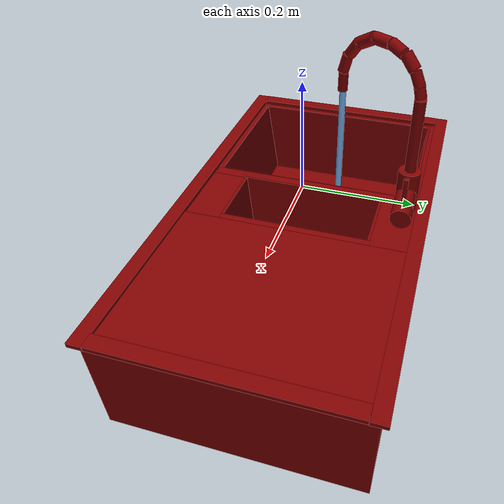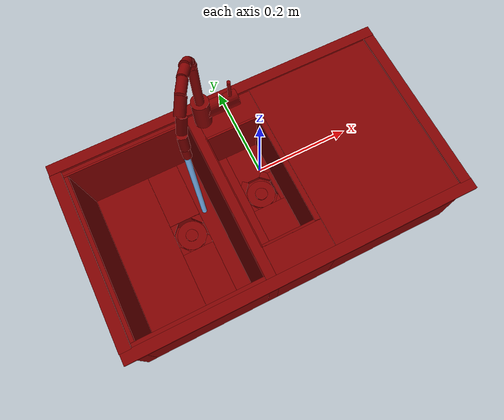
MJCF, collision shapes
<mujoco model="model">
  <compiler angle="radian"/>
  <asset>
    <mesh file="visuals/handle.obj" name="handle_vis"/>
    <mesh file="visuals/Body001.obj" name="Body001_vis"/>
    <mesh file="visuals/Funnel001.obj" name="Funnel001_vis"/>
    <mesh file="visuals/Funnel002.obj" name="Funnel002_vis"/>
    <mesh file="visuals/spout.obj" name="spout_vis"/>
    <texture file="visuals/T_BC001.png" name="Body001_material" type="2d"/>
    <material name="Body001_material" rgba="1 1 1 1.0" texture="Body001_material" shininess="-1023.0" specular="0.3103448502657381"/>
    <texture file="visuals/T_BC001.png" name="handle_material" type="2d"/>
    <material name="handle_material" rgba="1 1 1 1.0" texture="handle_material" shininess="-1023.0" specular="0.3103448502657381"/>
    <texture file="visuals/T_BC001.png" name="Funnel001_material" type="2d"/>
    <material name="Funnel001_material" rgba="1 1 1 1.0" texture="Funnel001_material" shininess="-1023.0" specular="0.3103448502657381"/>
    <texture file="visuals/T_BC001.png" name="Funnel002_material" type="2d"/>
    <material name="Funnel002_material" rgba="1 1 1 1.0" texture="Funnel002_material" shininess="-1023.0" specular="0.3103448502657381"/>
    <texture file="visuals/T_BC001.png" name="spout_material" type="2d"/>
    <material name="spout_material" rgba="1 1 1 1.0" texture="spout_material" shininess="-1023.0" specular="0.3103448502657381"/>
  </asset>
  <default>
    <default class="visual">
      <geom conaffinity="0" contype="0" group="1" type="mesh"/>
    </default>
    <default class="collision">
      <geom group="0" rgba="0.5 0 0 0.5"/>
    </default>
    <default class="spawn">
      <geom group="0" rgba="1 1 1 0.5" contype="0" conaffinity="0"/>
      <site group="0" rgba="1 1 1 0.5"/>
    </default>
    <default class="region">
      <geom group="1" conaffinity="0" contype="0" rgba="0 1 0 0"/>
    </default>
  </default>
  <worldbody>
    <body>
      <body name="object">
        <geom mesh="Body001_vis" type="mesh" solimp="0.998 0.998 0.001" solref="0.001 1" density="100" friction="0.95 0.3 0.1" class="visual" material="Body001_material"/>
        <geom class="collision" type="box" pos="0.23652738332748413 0.00023410702124238014 -0.14926347136497498" size="0.16209204494953156 0.22183653712272644 0.10342414677143097" quat="1.0 0.0 0.0 0.0"/>
        <geom class="collision" type="cylinder" pos="-0.021326115354895592 0.18427163362503052 -0.008932516910135746" size="0.018282365053892136 0.020360218361020088" quat="0.5 0.4999999701976776 0.5 0.5"/>
        <geom class="collision" type="cylinder" pos="-0.051278628408908844 0.18416287004947662 -0.010989080183207989" size="0.020259195938706398 0.047851018607616425" quat="0.9990497827529907 0.0 0.0 0.04358312115073204"/>
        <geom class="collision" type="box" pos="-0.07560476660728455 9.405938908457756e-05 -0.15127705037593842" size="0.012089341878890991 0.22169646620750427 0.10238426178693771" quat="1.0 0.0 0.0 0.0"/>
        <geom class="collision" type="box" pos="0.005088299512863159 -0.17985501885414124 -0.15042777359485626" size="0.06973908096551895 0.041747402399778366 0.10225952416658401" quat="1.0 0.0 0.0 0.0"/>
        <geom class="collision" type="box" pos="0.005088299512863159 -0.1315426081418991 -0.099894218146801" size="0.06973908096551895 0.0026383125223219395 0.05264557898044586" quat="0.9983898401260376 0.05672502517700195 0.0 0.0"/>
        <geom class="collision" type="box" pos="0.005088299512863159 0.12853343784809113 -0.11045671999454498" size="0.06973908096551895 0.0026383125223219395 0.06332626193761826" quat="0.9974493384361267 -0.07137805223464966 0.0 0.0"/>
        <geom class="collision" type="box" pos="0.005088299512863159 0.18094712495803833 -0.15042777359485626" size="0.06973908096551895 0.041364654898643494 0.10225936025381088" quat="1.0 0.0 0.0 0.0"/>
        <geom class="collision" type="box" pos="-0.23876143991947174 0.1889650821685791 -0.12696334719657898" size="0.14949655532836914 0.002638312289491296 0.07926877588033676" quat="0.9990689158439636 -0.043143387883901596 0.0 0.0"/>
        <geom class="collision" type="box" pos="-0.2434958964586258 0.20812034606933594 -0.15042777359485626" size="0.1542310118675232 0.01276779267936945 0.10225598514080048" quat="1.0 0.0 0.0 0.0"/>
        <geom class="collision" type="box" pos="-0.23876143991947174 -0.18729108572006226 -0.1269821971654892" size="0.14949655532836914 0.002638312289491296 0.07926878333091736" quat="0.9973665475845337 0.07252559065818787 0.0 0.0"/>
        <geom class="collision" type="box" pos="-0.24286778271198273 -0.20866277813911438 -0.15042777359485626" size="0.15485912561416626 0.01276779267936945 0.10225598514080048" quat="1.0 0.0 0.0 0.0"/>
        <geom class="collision" type="box" pos="-0.30198803544044495 -0.0015555024147033691 -0.23092524707317352" size="0.0775531753897667 0.19654637575149536 0.022491823881864548" quat="1.0 0.0 0.0 0.0"/>
        <geom class="collision" type="box" pos="-0.3863503336906433 9.405938908457756e-05 -0.15127705037593842" size="0.011722794733941555 0.22169646620750427 0.10238329321146011" quat="1.0 0.0 0.0 0.0"/>
        <geom class="collision" type="box" pos="-0.367370069026947 0.0006847637705504894 -0.15127091109752655" size="0.002350295428186655 0.19769826531410217 0.10238055139780045" quat="0.9991256594657898 0.0 -0.041807886213064194 0.0"/>
        <geom class="collision" type="box" pos="-0.11571699380874634 -0.0015555024147033691 -0.23107434809207916" size="0.0305434949696064 0.19654637575149536 0.022342780604958534" quat="1.0 0.0 0.0 0.0"/>
        <geom class="collision" type="box" pos="-0.184838205575943 0.1186731830239296 -0.23170946538448334" size="0.040500566363334656 0.07903584092855453 0.02170766144990921" quat="1.0 0.0 0.0 0.0"/>
        <geom class="collision" type="box" pos="-0.18600966036319733 -0.12200066447257996 -0.23117496073246002" size="0.04122575372457504 0.08241641521453857 0.022242633625864983" quat="1.0 0.0 0.0 0.0"/>
        <geom class="collision" type="box" pos="-0.045667652040719986 -0.0013713464140892029 -0.1635603904724121" size="0.014139543287456036 0.1264631152153015 0.013112707063555717" quat="1.0 0.0 0.0 0.0"/>
        <geom class="collision" type="box" pos="0.051219642162323 -0.005265929736196995 -0.16300077736377716" size="0.01209177728742361 0.044978559017181396 0.012109190225601196" quat="1.0 0.0 0.0 0.0"/>
        <geom class="collision" type="box" pos="0.013094743713736534 0.08130013942718506 -0.1572476178407669" size="0.04683594033122063 0.04241792485117912 0.00627686083316803" quat="1.0 0.0 0.0 0.0"/>
        <geom class="collision" type="box" pos="0.014179454185068607 -0.07933476567268372 -0.15682582557201385" size="0.046549007296562195 0.0453357957303524 0.006698662415146828" quat="1.0 0.0 0.0 0.0"/>
        <geom class="collision" type="box" pos="-0.09168035537004471 0.0006763041019439697 -0.13003428280353546" size="0.007510052993893623 0.19804197549819946 0.08050790429115295" quat="0.9981808066368103 0.0 0.06029169261455536 0.0"/>
        <geom class="collision" type="box" pos="0.06238365173339844 0.0006763041019439697 -0.10089131444692612" size="0.007510052062571049 0.14010055363178253 0.054632414132356644" quat="0.9981808066368103 0.0 0.06029169261455536 0.0"/>
        <geom class="collision" type="box" pos="-0.05904521048069 0.0006763041019439697 -0.1002633273601532" size="0.0012203236110508442 0.14010055363178253 0.054632414132356644" quat="0.9985798597335815 0.0 -0.05327498912811279 0.0"/>
        <geom class="collision" type="box" pos="0.0002938508987426758 0.21976149082183838 -0.04482324421405792" size="0.4090060293674469 0.013016534969210625 0.0041864109225571156" quat="1.0 0.0 0.0 0.0"/>
        <geom class="collision" type="box" pos="0.0002938508987426758 -0.21892192959785461 -0.04482324421405792" size="0.4090060293674469 0.013016534969210625 0.0041864109225571156" quat="1.0 0.0 0.0 0.0"/>
        <geom class="collision" type="box" pos="-0.39669299125671387 -0.0007286593317985535 -0.04482324421405792" size="0.013016549870371819 0.20691721141338348 0.004186480306088924" quat="1.0 0.0 0.0 0.0"/>
        <geom class="collision" type="box" pos="0.39572858810424805 -0.0007286220788955688 -0.04482324421405792" size="0.013016549870371819 0.20691721141338348 0.004186470061540604" quat="1.0 0.0 0.0 0.0"/>
        <geom class="collision" type="box" pos="0.005088299512863159 0.0007530823349952698 -0.2153775990009308" size="0.06973908096551895 0.14008310437202454 0.03730699419975281" quat="1.0 0.0 0.0 0.0"/>
        <geom class="collision" type="box" pos="-0.18519650399684906 -0.004535593092441559 -0.24889975786209106" size="0.03927761688828468 0.04429145157337189 0.004517826251685619" quat="1.0 0.0 0.0 0.0"/>
        <geom class="collision" type="box" pos="-0.21963703632354736 0.03309756889939308 -0.2168779820203781" size="0.0077866483479738235 0.01505254115909338 0.004746152553707361" quat="0.9355807900428772 0.0 -0.0 -0.35311275720596313"/>
        <geom class="collision" type="box" pos="-0.2188185155391693 -0.03232163190841675 -0.2168779820203781" size="0.007786647416651249 0.01505254115909338 0.004746152553707361" quat="0.9381937980651855 0.0 0.0 0.34611037373542786"/>
        <geom class="collision" type="box" pos="-0.15329214930534363 0.03226673603057861 -0.2168779820203781" size="0.007786647416651249 0.01505254115909338 0.004746152553707361" quat="0.9381937980651855 0.0 0.0 0.34611037373542786"/>
        <geom class="collision" type="box" pos="-0.15437868237495422 -0.032964807003736496 -0.2168779820203781" size="0.0077866483479738235 0.01505254115909338 0.004746152553707361" quat="0.9355807900428772 0.0 -0.0 -0.35311275720596313"/>
        <geom class="collision" type="box" pos="-0.02706190012395382 0.03058907389640808 -0.15569910407066345" size="0.0077866483479738235 0.01505254115909338 0.004746152553707361" quat="0.9355807900428772 0.0 -0.0 -0.35311275720596313"/>
        <geom class="collision" type="box" pos="0.03625345230102539 -0.0322796106338501 -0.15569910407066345" size="0.0077866483479738235 0.01505254115909338 0.004746152553707361" quat="0.9355807900428772 0.0 -0.0 -0.35311275720596313"/>
        <geom class="collision" type="box" pos="0.03406063839793205 0.03458072990179062 -0.15569910407066345" size="0.0077866483479738235 0.01505254115909338 0.004746152553707361" quat="0.9161313772201538 0.0 0.0 0.4008781909942627"/>
        <geom class="collision" type="box" pos="-0.029377171769738197 -0.0308250579982996 -0.15569910407066345" size="0.0077866483479738235 0.01505254115909338 0.004746152553707361" quat="0.9573758840560913 0.0 0.0 0.2888449430465698"/>
        <body name="handle">
          <joint axis="1.0 0.0 0.0" pos="0.011728471145033836 0.18457047641277313 -0.009023033082485199" limited="true" name="handle_joint_hinge_0" type="hinge" range="-0.7853981633974483 0.7853981633974483" damping="1" frictionloss="1" armature=".01" stiffness="0.05"/>
          <joint axis="0.0 1.0 0.0" pos="0.011728471145033836 0.18457047641277313 -0.009023033082485199" limited="true" name="handle_joint_hinge_1" type="hinge" range="0.0 0.17453292519943295" damping="1" frictionloss="1" armature=".01" stiffness="0.05"/>
          <geom mesh="handle_vis" type="mesh" solimp="0.998 0.998 0.001" solref="0.001 1" density="100" friction="0.95 0.3 0.1" class="visual" material="handle_material"/>
          <geom class="collision" type="cylinder" pos="0.020263846963644028 0.18472900986671448 -0.008932520635426044" size="0.01856803148984909 0.014965763315558434" quat="0.5 0.4999999701976776 0.5 0.5"/>
          <geom class="collision" type="cylinder" pos="0.00618293322622776 0.18427163362503052 -0.008932520635426044" size="0.01044311560690403 0.002668767236173153" quat="0.5 0.4999999701976776 0.5 0.5"/>
          <geom class="collision" type="cylinder" pos="0.018877984955906868 0.1845209300518036 0.03694717586040497" size="0.0043233647011220455 0.02681279182434082" quat="1.0 0.0 0.0 0.0"/>
        </body>
        <body name="Funnel001">
          <joint axis="0.0 0.0 1.0" pos="-0.18521839380264282 -0.00014210294466465712 -0.22248810529708862" limited="true" name="Funnel001_joint" range="0.0 0.3" type="slide" damping="1" frictionloss="1" armature=".01" stiffness="0.05"/>
          <geom mesh="Funnel001_vis" type="mesh" solimp="0.998 0.998 0.001" solref="0.001 1" density="100" friction="0.95 0.3 0.1" class="visual" material="Funnel001_material"/>
          <geom class="collision" type="cylinder" pos="-0.18476738035678864 -4.830211400985718e-05 -0.22137907147407532" size="0.03602096065878868 0.0008388549904339015" quat="1.0 0.0 0.0 0.0"/>
          <geom class="collision" type="cylinder" pos="-0.1853657364845276 -4.830211400985718e-05 -0.221288800239563" size="0.014919627457857132 0.00391645822674036" quat="1.0 0.0 0.0 0.0"/>
        </body>
        <body name="Funnel002">
          <joint axis="0.0 0.0 1.0" pos="0.004342064261436462 0.0004828465171158314 -0.16072390973567963" limited="true" name="Funnel002_joint" range="0.0 0.3" type="slide" damping="1" frictionloss="1" armature=".01" stiffness="0.05"/>
          <geom mesh="Funnel002_vis" type="mesh" solimp="0.998 0.998 0.001" solref="0.001 1" density="100" friction="0.95 0.3 0.1" class="visual" material="Funnel002_material"/>
          <geom class="collision" type="cylinder" pos="0.003999099135398865 0.0007852166891098022 -0.1609553098678589" size="0.03342888504266739 0.0018126824870705605" quat="1.0 0.0 0.0 0.0"/>
          <geom class="collision" type="cylinder" pos="0.004415725823491812 0.00033873505890369415 -0.15955613553524017" size="0.014739518985152245 0.004046990070492029" quat="1.0 0.0 0.0 0.0"/>
        </body>
        <body name="spout">
          <joint axis="0.0 0.0 1.0" pos="-0.05164801701903343 0.18472075462341309 0.13476690649986267" limited="true" name="spout_joint" range="-0.7853981633974483 0.7853981633974483" type="hinge" damping="1" frictionloss="1" armature=".01" stiffness="0.05"/>
          <site type="cylinder" rgba="0.5 0.75 1 1" size="0.0060607255436480045 0.17275060713291168" pos="-0.13217833638191223 0.03850845247507095 -0.030280524864792824" name="water"/>
          <geom mesh="spout_vis" type="mesh" solimp="0.998 0.998 0.001" solref="0.001 1" density="100" friction="0.95 0.3 0.1" class="visual" material="spout_material"/>
          <geom class="collision" type="cylinder" pos="-0.051278628408908844 0.18416287004947662 0.1043071374297142" size="0.010071869939565659 0.06765434145927429" quat="0.9990497827529907 0.0 0.0 0.04358312115073204"/>
          <geom class="collision" type="cylinder" pos="-0.056350983679294586 0.17457735538482666 0.20272040367126465" size="0.00965795572847128 0.013342335820198059" quat="0.9196361303329468 0.16925090551376343 -0.19007854163646698 0.29915493726730347"/>
          <geom class="collision" type="cylinder" pos="-0.066947340965271 0.15883058309555054 0.224899023771286" size="0.010738730430603027 0.014835407957434654" quat="0.8670938014984131 0.2554492652416229 -0.30630964040756226 0.2984432876110077"/>
          <geom class="collision" type="cylinder" pos="-0.07950039207935333 0.135133296251297 0.23928937315940857" size="0.010424953885376453 0.0144019341096282" quat="0.755740761756897 0.35412755608558655 -0.47815293073654175 0.2735312283039093"/>
          <geom class="collision" type="cylinder" pos="-0.09486466646194458 0.10810258239507675 0.24340298771858215" size="0.010484162718057632 0.016757162287831306" quat="0.6666451692581177 0.44615498185157776 -0.546674907207489 0.24015936255455017"/>
          <geom class="collision" type="cylinder" pos="-0.11060402542352676 0.08012466132640839 0.23531442880630493" size="0.011186142452061176 0.017792953178286552" quat="0.48275741934776306 0.5455015301704407 -0.6670209765434265 0.15638543665409088"/>
          <geom class="collision" type="cylinder" pos="-0.12134332209825516 0.057463571429252625 0.21556027233600616" size="0.010224497877061367 0.016100460663437843" quat="0.31250452995300293 0.6214025020599365 -0.7136070728302002 0.08345532417297363"/>
          <geom class="collision" type="cylinder" pos="-0.1290028691291809 0.04171176254749298 0.185683473944664" size="0.01005901675671339 0.01656615175306797" quat="0.10936148464679718 0.6737759113311768 -0.7270243167877197 0.07417364418506622"/>
          <geom class="collision" type="cylinder" pos="-0.131002277135849 0.038335949182510376 0.15161480009555817" size="0.0089662941172719 0.01852126605808735" quat="-0.006637726444751024 0.6839892268180847 -0.7293778657913208 0.011073256842792034"/>
          <geom class="collision" type="cylinder" pos="-0.053058695048093796 0.18088531494140625 0.18565408885478973" size="0.009657956659793854 0.013342335820198059" quat="0.9186800122261047 0.09213677048683167 -0.16663409769535065 0.34607934951782227"/>
        </body>
        <geom class="region" name="reg_main" type="box" pos="-7.450580596923828e-09 0.0 -0.1464393436908722" size="0.4084668457508087 0.23256176710128784 0.10692651569843292"/>
        <geom class="region" name="reg_basin_left" type="box" pos="-0.23170454800128937 -0.0006772875785827637 -0.1347910836338997" size="0.1345590502023697 0.18687570095062256 0.08016728609800339"/>
        <geom class="region" name="reg_basin_right" type="box" pos="0.004938986152410507 -0.0012628957629203796 -0.10136634856462479" size="0.058521222323179245 0.1255713477730751 0.046116046607494354"/>
      </body>
    </body>
  </worldbody>
  <actuator>
    <motor name="handle_joint_hinge_0_actuator" joint="handle_joint_hinge_0" gear="10"/>
    <motor name="handle_joint_hinge_1_actuator" joint="handle_joint_hinge_1" gear="10"/>
    <motor name="Funnel001_joint_actuator" joint="Funnel001_joint" gear="10"/>
    <motor name="Funnel002_joint_actuator" joint="Funnel002_joint" gear="10"/>
    <motor name="spout_joint_actuator" joint="spout_joint" gear="10"/>
  </actuator>
</mujoco>
